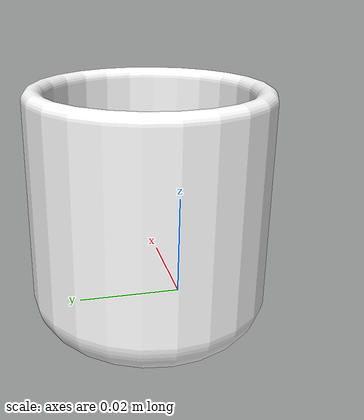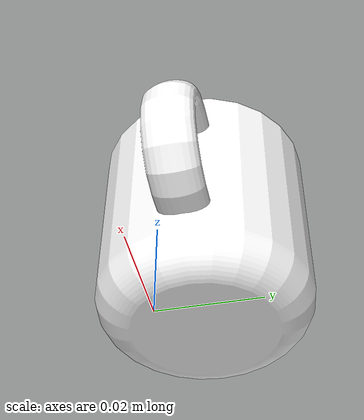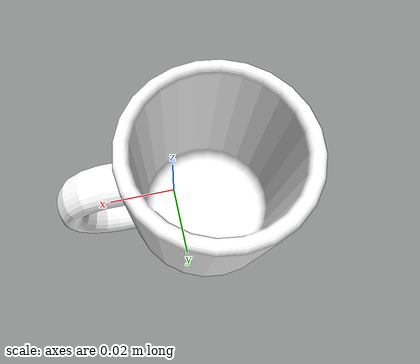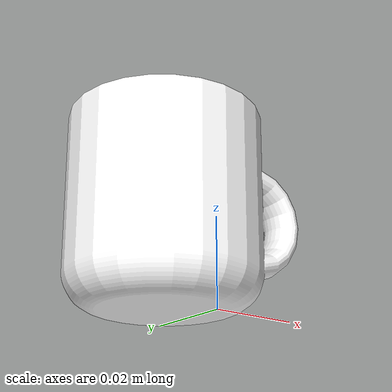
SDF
<?xml version="1.0" ?>
<sdf version="1.6">
  <model name="whitecup">
    <static>false</static>
    <link name="link">
      <inertial>
        <mass>0.010</mass>
        <inertia>
          <ixx>2.89083333333e-06</ixx>
          <ixy>0</ixy>
          <ixz>0</ixz>
          <iyy>4.6875e-06</iyy>
          <iyz>0</iyz>
          <izz>4.20333333333e-06</izz>
        </inertia>
      </inertial>
      <collision name="collision">
        <pose>0.00 0.008 0.022 0 0 0</pose>
        <geometry>
          <box>
            <size>0.06 0.038 0.045</size>
          </box>
        </geometry>
      </collision>
      <visual name="visual">
        <geometry>
          <mesh>
            <uri>model://whitecup/meshes/model.dae</uri>
	    <scale>0.7 0.7 0.7</scale>
          </mesh>
        </geometry>
      </visual>
    </link>
  </model>
</sdf>
